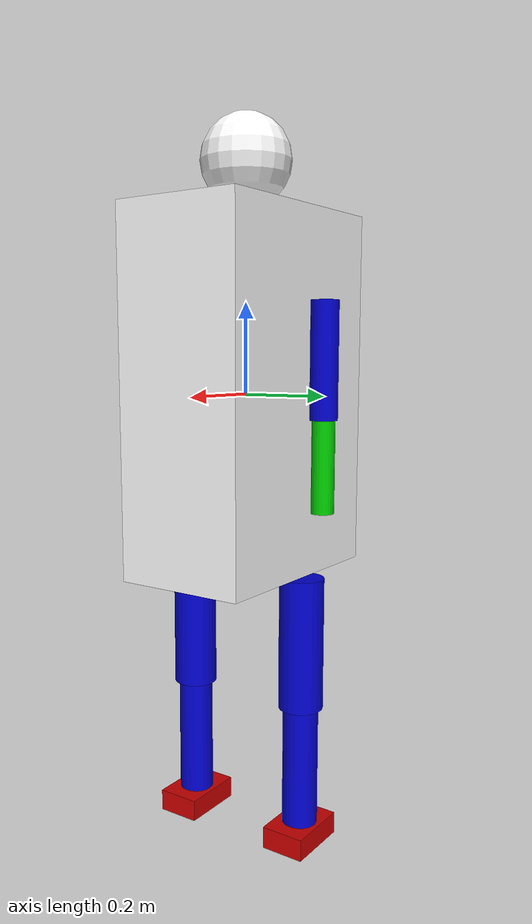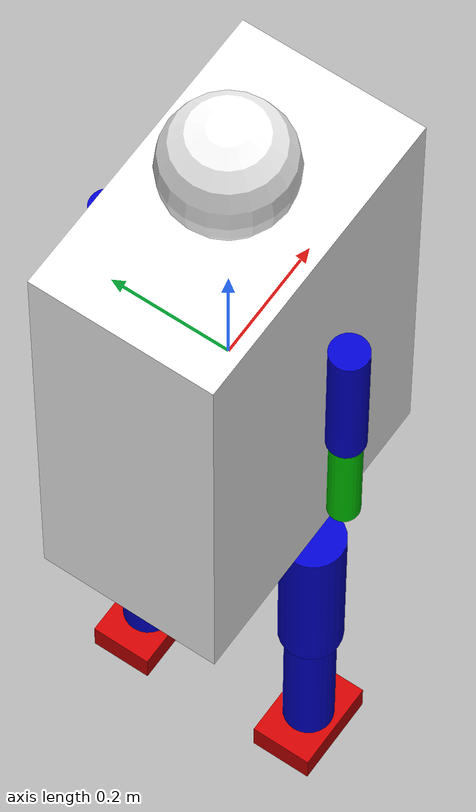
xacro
<?xml version="1.0"?>
<robot xmlns:xacro="http://www.ros.org/wiki/xacro" name="humanoid_robot">

  <!-- Constants -->
  <xacro:property name="M_PI" value="3.1415926535897931" />

  <!-- Base link properties -->
  <xacro:property name="base_mass" value="10.0" />
  <xacro:property name="base_length" value="0.5" />
  <xacro:property name="base_width" value="0.3" />
  <xacro:property name="base_height" value="0.8" />

  <!-- Leg properties -->
  <xacro:property name="thigh_mass" value="2.0" />
  <xacro:property name="thigh_length" value="0.3" />
  <xacro:property name="thigh_radius" value="0.05" />

  <xacro:property name="shin_mass" value="1.5" />
  <xacro:property name="shin_length" value="0.3" />
  <xacro:property name="shin_radius" value="0.04" />

  <!-- Foot properties -->
  <xacro:property name="foot_mass" value="1.0" />
  <xacro:property name="foot_length" value="0.15" />
  <xacro:property name="foot_width" value="0.1" />
  <xacro:property name="foot_height" value="0.05" />

  <!-- Arm properties -->
  <xacro:property name="upper_arm_mass" value="1.0" />
  <xacro:property name="upper_arm_length" value="0.25" />
  <xacro:property name="upper_arm_radius" value="0.03" />

  <xacro:property name="forearm_mass" value="0.8" />
  <xacro:property name="forearm_length" value="0.2" />
  <xacro:property name="forearm_radius" value="0.025" />

  <!-- Materials -->
  <material name="blue">
    <color rgba="0.0 0.0 0.8 1.0"/>
  </material>

  <material name="red">
    <color rgba="0.8 0.0 0.0 1.0"/>
  </material>

  <material name="white">
    <color rgba="1.0 1.0 1.0 1.0"/>
  </material>

  <material name="green">
    <color rgba="0.0 0.8 0.0 1.0"/>
  </material>

  <!-- Base Link (Torso) -->
  <link name="base_link">
    <inertial>
      <mass value="${base_mass}" />
      <origin xyz="0 0 0" rpy="0 0 0" />
      <inertia
        ixx="${base_mass / 12.0 * (base_width*base_width + base_height*base_height)}"
        ixy="0.0"
        ixz="0.0"
        iyy="${base_mass / 12.0 * (base_length*base_length + base_height*base_height)}"
        iyz="0.0"
        izz="${base_mass / 12.0 * (base_length*base_length + base_width*base_width)}" />
    </inertial>

    <visual>
      <origin xyz="0 0 0" rpy="0 0 0" />
      <geometry>
        <box size="${base_length} ${base_width} ${base_height}" />
      </geometry>
      <material name="white" />
    </visual>

    <collision>
      <origin xyz="0 0 0" rpy="0 0 0" />
      <geometry>
        <box size="${base_length} ${base_width} ${base_height}" />
      </geometry>
    </collision>
  </link>

  <!-- ========== LEFT LEG ========== -->

  <!-- Left Hip Joint (revolute) -->
  <joint name="left_hip_joint" type="revolute">
    <parent link="base_link" />
    <child link="left_thigh" />
    <origin xyz="0.0 0.15 -${base_height/2}" rpy="0 0 0" />
    <axis xyz="0 1 0" />
    <limit lower="-${M_PI/3}" upper="${M_PI/2}" effort="100.0" velocity="2.0" />
    <dynamics damping="1.0" friction="0.5" />
  </joint>

  <link name="left_thigh">
    <inertial>
      <mass value="${thigh_mass}" />
      <origin xyz="0 0 -${thigh_length/2}" rpy="0 0 0" />
      <inertia
        ixx="${thigh_mass / 12.0 * (3*thigh_radius*thigh_radius + thigh_length*thigh_length)}"
        ixy="0.0"
        ixz="0.0"
        iyy="${thigh_mass / 12.0 * (3*thigh_radius*thigh_radius + thigh_length*thigh_length)}"
        iyz="0.0"
        izz="${thigh_mass * thigh_radius * thigh_radius / 2.0}" />
    </inertial>

    <visual>
      <origin xyz="0 0 -${thigh_length/2}" rpy="0 0 0" />
      <geometry>
        <cylinder radius="${thigh_radius}" length="${thigh_length}" />
      </geometry>
      <material name="blue" />
    </visual>

    <collision>
      <origin xyz="0 0 -${thigh_length/2}" rpy="0 0 0" />
      <geometry>
        <cylinder radius="${thigh_radius}" length="${thigh_length}" />
      </geometry>
    </collision>
  </link>

  <!-- Left Knee Joint (revolute) -->
  <joint name="left_knee_joint" type="revolute">
    <parent link="left_thigh" />
    <child link="left_shin" />
    <origin xyz="0 0 -${thigh_length}" rpy="0 0 0" />
    <axis xyz="0 1 0" />
    <limit lower="0.0" upper="${M_PI * 2.0 / 3.0}" effort="80.0" velocity="2.0" />
    <dynamics damping="0.8" friction="0.4" />
  </joint>

  <link name="left_shin">
    <inertial>
      <mass value="${shin_mass}" />
      <origin xyz="0 0 -${shin_length/2}" rpy="0 0 0" />
      <inertia
        ixx="${shin_mass / 12.0 * (3*shin_radius*shin_radius + shin_length*shin_length)}"
        ixy="0.0"
        ixz="0.0"
        iyy="${shin_mass / 12.0 * (3*shin_radius*shin_radius + shin_length*shin_length)}"
        iyz="0.0"
        izz="${shin_mass * shin_radius * shin_radius / 2.0}" />
    </inertial>

    <visual>
      <origin xyz="0 0 -${shin_length/2}" rpy="0 0 0" />
      <geometry>
        <cylinder radius="${shin_radius}" length="${shin_length}" />
      </geometry>
      <material name="blue" />
    </visual>

    <collision>
      <origin xyz="0 0 -${shin_length/2}" rpy="0 0 0" />
      <geometry>
        <cylinder radius="${shin_radius}" length="${shin_length}" />
      </geometry>
    </collision>
  </link>

  <!-- Left Ankle Joint (revolute) -->
  <joint name="left_ankle_joint" type="revolute">
    <parent link="left_shin" />
    <child link="left_foot" />
    <origin xyz="0 0 -${shin_length}" rpy="0 0 0" />
    <axis xyz="0 1 0" />
    <limit lower="-${M_PI/4}" upper="${M_PI/4}" effort="50.0" velocity="2.0" />
    <dynamics damping="0.5" friction="0.3" />
  </joint>

  <link name="left_foot">
    <inertial>
      <mass value="${foot_mass}" />
      <origin xyz="0 0 0" rpy="0 0 0" />
      <inertia
        ixx="${foot_mass / 12.0 * (foot_width*foot_width + foot_height*foot_height)}"
        ixy="0.0"
        ixz="0.0"
        iyy="${foot_mass / 12.0 * (foot_length*foot_length + foot_height*foot_height)}"
        iyz="0.0"
        izz="${foot_mass / 12.0 * (foot_length*foot_length + foot_width*foot_width)}" />
    </inertial>

    <visual>
      <origin xyz="0 0 0" rpy="0 0 0" />
      <geometry>
        <box size="${foot_length} ${foot_width} ${foot_height}" />
      </geometry>
      <material name="red" />
    </visual>

    <collision>
      <origin xyz="0 0 0" rpy="0 0 0" />
      <geometry>
        <box size="${foot_length} ${foot_width} ${foot_height}" />
      </geometry>
    </collision>
  </link>

  <!-- ========== RIGHT LEG ========== -->

  <!-- Right Hip Joint (revolute) -->
  <joint name="right_hip_joint" type="revolute">
    <parent link="base_link" />
    <child link="right_thigh" />
    <origin xyz="0.0 -0.15 -${base_height/2}" rpy="0 0 0" />
    <axis xyz="0 1 0" />
    <limit lower="-${M_PI/3}" upper="${M_PI/2}" effort="100.0" velocity="2.0" />
    <dynamics damping="1.0" friction="0.5" />
  </joint>

  <link name="right_thigh">
    <inertial>
      <mass value="${thigh_mass}" />
      <origin xyz="0 0 -${thigh_length/2}" rpy="0 0 0" />
      <inertia
        ixx="${thigh_mass / 12.0 * (3*thigh_radius*thigh_radius + thigh_length*thigh_length)}"
        ixy="0.0"
        ixz="0.0"
        iyy="${thigh_mass / 12.0 * (3*thigh_radius*thigh_radius + thigh_length*thigh_length)}"
        iyz="0.0"
        izz="${thigh_mass * thigh_radius * thigh_radius / 2.0}" />
    </inertial>

    <visual>
      <origin xyz="0 0 -${thigh_length/2}" rpy="0 0 0" />
      <geometry>
        <cylinder radius="${thigh_radius}" length="${thigh_length}" />
      </geometry>
      <material name="blue" />
    </visual>

    <collision>
      <origin xyz="0 0 -${thigh_length/2}" rpy="0 0 0" />
      <geometry>
        <cylinder radius="${thigh_radius}" length="${thigh_length}" />
      </geometry>
    </collision>
  </link>

  <!-- Right Knee Joint (revolute) -->
  <joint name="right_knee_joint" type="revolute">
    <parent link="right_thigh" />
    <child link="right_shin" />
    <origin xyz="0 0 -${thigh_length}" rpy="0 0 0" />
    <axis xyz="0 1 0" />
    <limit lower="0.0" upper="${M_PI * 2.0 / 3.0}" effort="80.0" velocity="2.0" />
    <dynamics damping="0.8" friction="0.4" />
  </joint>

  <link name="right_shin">
    <inertial>
      <mass value="${shin_mass}" />
      <origin xyz="0 0 -${shin_length/2}" rpy="0 0 0" />
      <inertia
        ixx="${shin_mass / 12.0 * (3*shin_radius*shin_radius + shin_length*shin_length)}"
        ixy="0.0"
        ixz="0.0"
        iyy="${shin_mass / 12.0 * (3*shin_radius*shin_radius + shin_length*shin_length)}"
        iyz="0.0"
        izz="${shin_mass * shin_radius * shin_radius / 2.0}" />
    </inertial>

    <visual>
      <origin xyz="0 0 -${shin_length/2}" rpy="0 0 0" />
      <geometry>
        <cylinder radius="${shin_radius}" length="${shin_length}" />
      </geometry>
      <material name="blue" />
    </visual>

    <collision>
      <origin xyz="0 0 -${shin_length/2}" rpy="0 0 0" />
      <geometry>
        <cylinder radius="${shin_radius}" length="${shin_length}" />
      </geometry>
    </collision>
  </link>

  <!-- Right Ankle Joint (revolute) -->
  <joint name="right_ankle_joint" type="revolute">
    <parent link="right_shin" />
    <child link="right_foot" />
    <origin xyz="0 0 -${shin_length}" rpy="0 0 0" />
    <axis xyz="0 1 0" />
    <limit lower="-${M_PI/4}" upper="${M_PI/4}" effort="50.0" velocity="2.0" />
    <dynamics damping="0.5" friction="0.3" />
  </joint>

  <link name="right_foot">
    <inertial>
      <mass value="${foot_mass}" />
      <origin xyz="0 0 0" rpy="0 0 0" />
      <inertia
        ixx="${foot_mass / 12.0 * (foot_width*foot_width + foot_height*foot_height)}"
        ixy="0.0"
        ixz="0.0"
        iyy="${foot_mass / 12.0 * (foot_length*foot_length + foot_height*foot_height)}"
        iyz="0.0"
        izz="${foot_mass / 12.0 * (foot_length*foot_length + foot_width*foot_width)}" />
    </inertial>

    <visual>
      <origin xyz="0 0 0" rpy="0 0 0" />
      <geometry>
        <box size="${foot_length} ${foot_width} ${foot_height}" />
      </geometry>
      <material name="red" />
    </visual>

    <collision>
      <origin xyz="0 0 0" rpy="0 0 0" />
      <geometry>
        <box size="${foot_length} ${foot_width} ${foot_height}" />
      </geometry>
    </collision>
  </link>

  <!-- ========== LEFT ARM ========== -->

  <!-- Left Shoulder Joint (revolute) -->
  <joint name="left_shoulder_joint" type="revolute">
    <parent link="base_link" />
    <child link="left_upper_arm" />
    <origin xyz="0.0 ${base_width/2 + 0.05} ${base_height/4}" rpy="0 0 0" />
    <axis xyz="0 1 0" />
    <limit lower="-${M_PI/2}" upper="${M_PI}" effort="50.0" velocity="2.0" />
    <dynamics damping="0.5" friction="0.3" />
  </joint>

  <link name="left_upper_arm">
    <inertial>
      <mass value="${upper_arm_mass}" />
      <origin xyz="0 0 -${upper_arm_length/2}" rpy="0 0 0" />
      <inertia
        ixx="${upper_arm_mass / 12.0 * (3*upper_arm_radius*upper_arm_radius + upper_arm_length*upper_arm_length)}"
        ixy="0.0"
        ixz="0.0"
        iyy="${upper_arm_mass / 12.0 * (3*upper_arm_radius*upper_arm_radius + upper_arm_length*upper_arm_length)}"
        iyz="0.0"
        izz="${upper_arm_mass * upper_arm_radius * upper_arm_radius / 2.0}" />
    </inertial>

    <visual>
      <origin xyz="0 0 -${upper_arm_length/2}" rpy="0 0 0" />
      <geometry>
        <cylinder radius="${upper_arm_radius}" length="${upper_arm_length}" />
      </geometry>
      <material name="blue" />
    </visual>

    <collision>
      <origin xyz="0 0 -${upper_arm_length/2}" rpy="0 0 0" />
      <geometry>
        <cylinder radius="${upper_arm_radius}" length="${upper_arm_length}" />
      </geometry>
    </collision>
  </link>

  <!-- Left Elbow Joint (revolute) -->
  <joint name="left_elbow_joint" type="revolute">
    <parent link="left_upper_arm" />
    <child link="left_forearm" />
    <origin xyz="0 0 -${upper_arm_length}" rpy="0 0 0" />
    <axis xyz="0 1 0" />
    <limit lower="0.0" upper="${M_PI * 3.0 / 4.0}" effort="30.0" velocity="2.0" />
    <dynamics damping="0.3" friction="0.2" />
  </joint>

  <link name="left_forearm">
    <inertial>
      <mass value="${forearm_mass}" />
      <origin xyz="0 0 -${forearm_length/2}" rpy="0 0 0" />
      <inertia
        ixx="${forearm_mass / 12.0 * (3*forearm_radius*forearm_radius + forearm_length*forearm_length)}"
        ixy="0.0"
        ixz="0.0"
        iyy="${forearm_mass / 12.0 * (3*forearm_radius*forearm_radius + forearm_length*forearm_length)}"
        iyz="0.0"
        izz="${forearm_mass * forearm_radius * forearm_radius / 2.0}" />
    </inertial>

    <visual>
      <origin xyz="0 0 -${forearm_length/2}" rpy="0 0 0" />
      <geometry>
        <cylinder radius="${forearm_radius}" length="${forearm_length}" />
      </geometry>
      <material name="green" />
    </visual>

    <collision>
      <origin xyz="0 0 -${forearm_length/2}" rpy="0 0 0" />
      <geometry>
        <cylinder radius="${forearm_radius}" length="${forearm_length}" />
      </geometry>
    </collision>
  </link>

  <!-- ========== RIGHT ARM ========== -->

  <!-- Right Shoulder Joint (revolute) -->
  <joint name="right_shoulder_joint" type="revolute">
    <parent link="base_link" />
    <child link="right_upper_arm" />
    <origin xyz="0.0 -${base_width/2 + 0.05} ${base_height/4}" rpy="0 0 0" />
    <axis xyz="0 1 0" />
    <limit lower="-${M_PI/2}" upper="${M_PI}" effort="50.0" velocity="2.0" />
    <dynamics damping="0.5" friction="0.3" />
  </joint>

  <link name="right_upper_arm">
    <inertial>
      <mass value="${upper_arm_mass}" />
      <origin xyz="0 0 -${upper_arm_length/2}" rpy="0 0 0" />
      <inertia
        ixx="${upper_arm_mass / 12.0 * (3*upper_arm_radius*upper_arm_radius + upper_arm_length*upper_arm_length)}"
        ixy="0.0"
        ixz="0.0"
        iyy="${upper_arm_mass / 12.0 * (3*upper_arm_radius*upper_arm_radius + upper_arm_length*upper_arm_length)}"
        iyz="0.0"
        izz="${upper_arm_mass * upper_arm_radius * upper_arm_radius / 2.0}" />
    </inertial>

    <visual>
      <origin xyz="0 0 -${upper_arm_length/2}" rpy="0 0 0" />
      <geometry>
        <cylinder radius="${upper_arm_radius}" length="${upper_arm_length}" />
      </geometry>
      <material name="blue" />
    </visual>

    <collision>
      <origin xyz="0 0 -${upper_arm_length/2}" rpy="0 0 0" />
      <geometry>
        <cylinder radius="${upper_arm_radius}" length="${upper_arm_length}" />
      </geometry>
    </collision>
  </link>

  <!-- Right Elbow Joint (revolute) -->
  <joint name="right_elbow_joint" type="revolute">
    <parent link="right_upper_arm" />
    <child link="right_forearm" />
    <origin xyz="0 0 -${upper_arm_length}" rpy="0 0 0" />
    <axis xyz="0 1 0" />
    <limit lower="0.0" upper="${M_PI * 3.0 / 4.0}" effort="30.0" velocity="2.0" />
    <dynamics damping="0.3" friction="0.2" />
  </joint>

  <link name="right_forearm">
    <inertial>
      <mass value="${forearm_mass}" />
      <origin xyz="0 0 -${forearm_length/2}" rpy="0 0 0" />
      <inertia
        ixx="${forearm_mass / 12.0 * (3*forearm_radius*forearm_radius + forearm_length*forearm_length)}"
        ixy="0.0"
        ixz="0.0"
        iyy="${forearm_mass / 12.0 * (3*forearm_radius*forearm_radius + forearm_length*forearm_length)}"
        iyz="0.0"
        izz="${forearm_mass * forearm_radius * forearm_radius / 2.0}" />
    </inertial>

    <visual>
      <origin xyz="0 0 -${forearm_length/2}" rpy="0 0 0" />
      <geometry>
        <cylinder radius="${forearm_radius}" length="${forearm_length}" />
      </geometry>
      <material name="green" />
    </visual>

    <collision>
      <origin xyz="0 0 -${forearm_length/2}" rpy="0 0 0" />
      <geometry>
        <cylinder radius="${forearm_radius}" length="${forearm_length}" />
      </geometry>
    </collision>
  </link>

  <!-- ========== HEAD ========== -->

  <!-- Head Joint (fixed for now) -->
  <joint name="head_joint" type="fixed">
    <parent link="base_link" />
    <child link="head" />
    <origin xyz="0 0 ${base_height/2 + 0.1}" rpy="0 0 0" />
  </joint>

  <link name="head">
    <inertial>
      <mass value="2.0" />
      <origin xyz="0 0 0" rpy="0 0 0" />
      <inertia
        ixx="0.0167"
        ixy="0.0"
        ixz="0.0"
        iyy="0.0167"
        iyz="0.0"
        izz="0.0167" />
    </inertial>

    <visual>
      <origin xyz="0 0 0" rpy="0 0 0" />
      <geometry>
        <sphere radius="0.1" />
      </geometry>
      <material name="white" />
    </visual>

    <collision>
      <origin xyz="0 0 0" rpy="0 0 0" />
      <geometry>
        <sphere radius="0.1" />
      </geometry>
    </collision>
  </link>

  <!-- ================ GAZEBO SPECIFIC TAGS ================ -->

  <!-- Gazebo materials and physics properties -->
  <gazebo reference="base_link">
    <material>Gazebo/White</material>
    <mu1>0.8</mu1>
    <mu2>0.8</mu2>
    <kp>1e7</kp>
    <kd>1</kd>
    <minDepth>0.001</minDepth>
  </gazebo>

  <gazebo reference="left_thigh">
    <material>Gazebo/Blue</material>
    <mu1>0.8</mu1>
    <mu2>0.8</mu2>
  </gazebo>

  <gazebo reference="left_shin">
    <material>Gazebo/Blue</material>
    <mu1>0.8</mu1>
    <mu2>0.8</mu2>
  </gazebo>

  <gazebo reference="right_thigh">
    <material>Gazebo/Blue</material>
    <mu1>0.8</mu1>
    <mu2>0.8</mu2>
  </gazebo>

  <gazebo reference="right_shin">
    <material>Gazebo/Blue</material>
    <mu1>0.8</mu1>
    <mu2>0.8</mu2>
  </gazebo>

  <gazebo reference="left_foot">
    <material>Gazebo/Red</material>
    <mu1>1.0</mu1>
    <mu2>1.0</mu2>
    <kp>1e8</kp>
    <kd>1</kd>
    <minDepth>0.001</minDepth>
  </gazebo>

  <gazebo reference="right_foot">
    <material>Gazebo/Red</material>
    <mu1>1.0</mu1>
    <mu2>1.0</mu2>
    <kp>1e8</kp>
    <kd>1</kd>
    <minDepth>0.001</minDepth>
  </gazebo>

  <gazebo reference="left_upper_arm">
    <material>Gazebo/Blue</material>
    <mu1>0.5</mu1>
    <mu2>0.5</mu2>
  </gazebo>

  <gazebo reference="left_forearm">
    <material>Gazebo/Green</material>
    <mu1>0.5</mu1>
    <mu2>0.5</mu2>
  </gazebo>

  <gazebo reference="right_upper_arm">
    <material>Gazebo/Blue</material>
    <mu1>0.5</mu1>
    <mu2>0.5</mu2>
  </gazebo>

  <gazebo reference="right_forearm">
    <material>Gazebo/Green</material>
    <mu1>0.5</mu1>
    <mu2>0.5</mu2>
  </gazebo>

  <gazebo reference="head">
    <material>Gazebo/White</material>
    <mu1>0.5</mu1>
    <mu2>0.5</mu2>
  </gazebo>

  <!-- ================ ROS2 CONTROL ================ -->

  <ros2_control name="HumanoidSystem" type="system">
    <hardware>
      <plugin>gazebo_ros2_control/GazeboSystem</plugin>
    </hardware>

    <!-- Left Leg Joints -->
    <joint name="left_hip_joint">
      <command_interface name="position">
        <param name="min">-1.047</param>
        <param name="max">1.571</param>
      </command_interface>
      <command_interface name="velocity"/>
      <command_interface name="effort"/>
      <state_interface name="position"/>
      <state_interface name="velocity"/>
      <state_interface name="effort"/>
    </joint>

    <joint name="left_knee_joint">
      <command_interface name="position">
        <param name="min">0.0</param>
        <param name="max">2.094</param>
      </command_interface>
      <command_interface name="velocity"/>
      <command_interface name="effort"/>
      <state_interface name="position"/>
      <state_interface name="velocity"/>
      <state_interface name="effort"/>
    </joint>

    <joint name="left_ankle_joint">
      <command_interface name="position">
        <param name="min">-0.785</param>
        <param name="max">0.785</param>
      </command_interface>
      <command_interface name="velocity"/>
      <command_interface name="effort"/>
      <state_interface name="position"/>
      <state_interface name="velocity"/>
      <state_interface name="effort"/>
    </joint>

    <!-- Right Leg Joints -->
    <joint name="right_hip_joint">
      <command_interface name="position">
        <param name="min">-1.047</param>
        <param name="max">1.571</param>
      </command_interface>
      <command_interface name="velocity"/>
      <command_interface name="effort"/>
      <state_interface name="position"/>
      <state_interface name="velocity"/>
      <state_interface name="effort"/>
    </joint>

    <joint name="right_knee_joint">
      <command_interface name="position">
        <param name="min">0.0</param>
        <param name="max">2.094</param>
      </command_interface>
      <command_interface name="velocity"/>
      <command_interface name="effort"/>
      <state_interface name="position"/>
      <state_interface name="velocity"/>
      <state_interface name="effort"/>
    </joint>

    <joint name="right_ankle_joint">
      <command_interface name="position">
        <param name="min">-0.785</param>
        <param name="max">0.785</param>
      </command_interface>
      <command_interface name="velocity"/>
      <command_interface name="effort"/>
      <state_interface name="position"/>
      <state_interface name="velocity"/>
      <state_interface name="effort"/>
    </joint>

    <!-- Left Arm Joints -->
    <joint name="left_shoulder_joint">
      <command_interface name="position">
        <param name="min">-1.571</param>
        <param name="max">3.142</param>
      </command_interface>
      <command_interface name="velocity"/>
      <command_interface name="effort"/>
      <state_interface name="position"/>
      <state_interface name="velocity"/>
      <state_interface name="effort"/>
    </joint>

    <joint name="left_elbow_joint">
      <command_interface name="position">
        <param name="min">0.0</param>
        <param name="max">2.356</param>
      </command_interface>
      <command_interface name="velocity"/>
      <command_interface name="effort"/>
      <state_interface name="position"/>
      <state_interface name="velocity"/>
      <state_interface name="effort"/>
    </joint>

    <!-- Right Arm Joints -->
    <joint name="right_shoulder_joint">
      <command_interface name="position">
        <param name="min">-1.571</param>
        <param name="max">3.142</param>
      </command_interface>
      <command_interface name="velocity"/>
      <command_interface name="effort"/>
      <state_interface name="position"/>
      <state_interface name="velocity"/>
      <state_interface name="effort"/>
    </joint>

    <joint name="right_elbow_joint">
      <command_interface name="position">
        <param name="min">0.0</param>
        <param name="max">2.356</param>
      </command_interface>
      <command_interface name="velocity"/>
      <command_interface name="effort"/>
      <state_interface name="position"/>
      <state_interface name="velocity"/>
      <state_interface name="effort"/>
    </joint>

  </ros2_control>

  <!-- Gazebo ROS2 Control Plugin -->
  <gazebo>
    <plugin filename="libgazebo_ros2_control.so" name="gazebo_ros2_control">
      <parameters>$(find robot_description)/config/humanoid_controllers.yaml</parameters>
    </plugin>
  </gazebo>

  <!-- ================ SENSOR PLUGINS ================ -->

  <!-- IMU Sensor on Base Link -->
  <gazebo reference="base_link">
    <sensor name="imu_sensor" type="imu">
      <always_on>true</always_on>
      <update_rate>100</update_rate>
      <imu>
        <angular_velocity>
          <x>
            <noise type="gaussian">
              <mean>0.0</mean>
              <stddev>2e-4</stddev>
            </noise>
          </x>
          <y>
            <noise type="gaussian">
              <mean>0.0</mean>
              <stddev>2e-4</stddev>
            </noise>
          </y>
          <z>
            <noise type="gaussian">
              <mean>0.0</mean>
              <stddev>2e-4</stddev>
            </noise>
          </z>
        </angular_velocity>
        <linear_acceleration>
          <x>
            <noise type="gaussian">
              <mean>0.0</mean>
              <stddev>1.7e-2</stddev>
            </noise>
          </x>
          <y>
            <noise type="gaussian">
              <mean>0.0</mean>
              <stddev>1.7e-2</stddev>
            </noise>
          </y>
          <z>
            <noise type="gaussian">
              <mean>0.0</mean>
              <stddev>1.7e-2</stddev>
            </noise>
          </z>
        </linear_acceleration>
      </imu>
      <plugin name="imu_plugin" filename="libgazebo_ros_imu_sensor.so">
        <ros>
          <namespace>/</namespace>
          <remapping>~/out:=imu/data</remapping>
        </ros>
        <initial_orientation_as_reference>false</initial_orientation_as_reference>
        <frame_name>base_link</frame_name>
      </plugin>
    </sensor>
  </gazebo>

  <!-- LiDAR Sensor on Head -->
  <gazebo reference="head">
    <sensor name="lidar_sensor" type="ray">
      <always_on>true</always_on>
      <update_rate>10</update_rate>
      <visualize>true</visualize>
      <ray>
        <scan>
          <horizontal>
            <samples>720</samples>
            <resolution>1</resolution>
            <min_angle>-3.14159</min_angle>
            <max_angle>3.14159</max_angle>
          </horizontal>
        </scan>
        <range>
          <min>0.1</min>
          <max>30.0</max>
          <resolution>0.01</resolution>
        </range>
        <noise>
          <type>gaussian</type>
          <mean>0.0</mean>
          <stddev>0.01</stddev>
        </noise>
      </ray>
      <plugin name="lidar_plugin" filename="libgazebo_ros_ray_sensor.so">
        <ros>
          <namespace>/</namespace>
          <remapping>~/out:=scan</remapping>
        </ros>
        <output_type>sensor_msgs/LaserScan</output_type>
        <frame_name>head</frame_name>
      </plugin>
    </sensor>
  </gazebo>

  <!-- RGB-D Camera on Head -->
  <gazebo reference="head">
    <sensor name="camera_sensor" type="depth">
      <always_on>true</always_on>
      <update_rate>30</update_rate>
      <camera name="head_camera">
        <horizontal_fov>1.3962634</horizontal_fov>
        <image>
          <width>640</width>
          <height>480</height>
          <format>R8G8B8</format>
        </image>
        <clip>
          <near>0.02</near>
          <far>10.0</far>
        </clip>
        <noise>
          <type>gaussian</type>
          <mean>0.0</mean>
          <stddev>0.007</stddev>
        </noise>
      </camera>
      <plugin name="camera_plugin" filename="libgazebo_ros_camera.so">
        <ros>
          <namespace>/</namespace>
          <remapping>~/image_raw:=camera/image_raw</remapping>
          <remapping>~/camera_info:=camera/camera_info</remapping>
          <remapping>~/depth/image_raw:=camera/depth/image_raw</remapping>
          <remapping>~/depth/camera_info:=camera/depth/camera_info</remapping>
          <remapping>~/points:=camera/points</remapping>
        </ros>
        <frame_name>head</frame_name>
        <hack_baseline>0.07</hack_baseline>
        <min_depth>0.02</min_depth>
        <max_depth>10.0</max_depth>
      </plugin>
    </sensor>
  </gazebo>

</robot>
